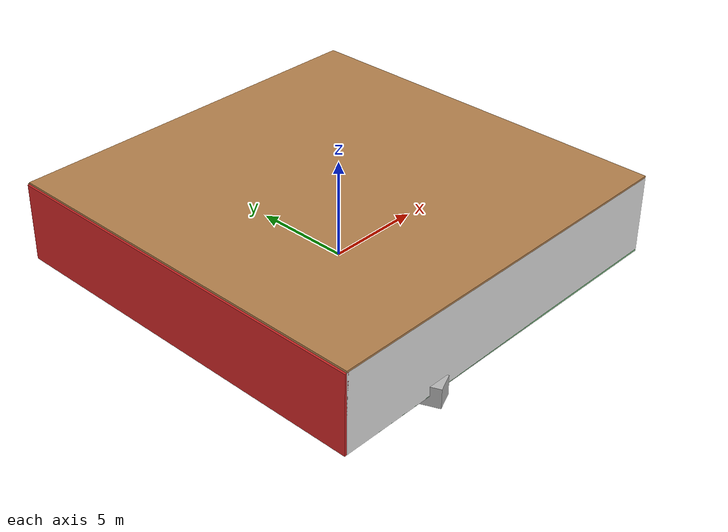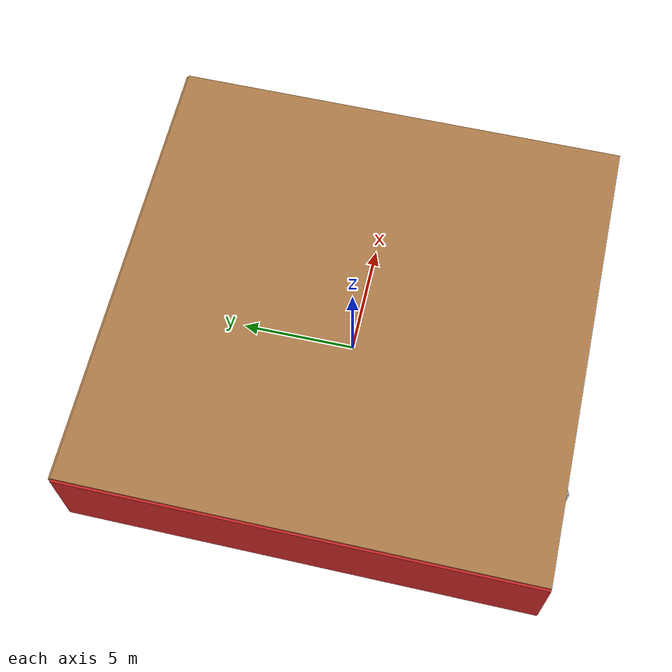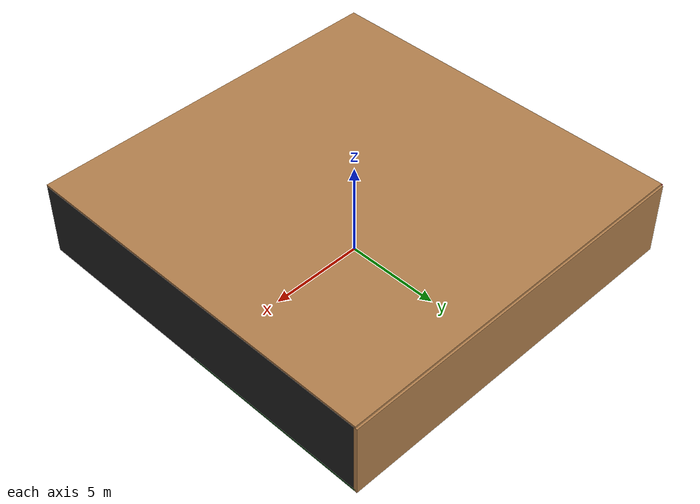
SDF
<sdf version="1.4">
 <world name="default">
  <physics type="ode">
   <max_step_size>0.001</max_step_size>
   <real_time_factor>1</real_time_factor>
   <real_time_update_rate>1000</real_time_update_rate>
   <gravity>0 0 -9.8</gravity>
  </physics>
  <scene><ambient>0.4 0.4 0.4 1</ambient><background>0.7 0.7 0.7 1</background><shadows>1</shadows></scene>
  <model name="Surrounding">
   <static>1</static>
   <link name="Ceiling">
    <collision name="Ceiling_Collision"><geometry><box><size>20 20 0.1</size></box></geometry></collision>
    <visual name="Ceiling_Visual">
     <geometry><box><size>20 20 0.1</size></box></geometry>
     <material>
      <script><uri>file://media/materials/scripts/gazebo.material</uri><name>Gazebo/Wood</name></script>
     </material>
    </visual>
    <pose>0 0 4.05 0 0 0</pose>
   </link>
   <link name="Wall_South">
    <collision name="Wall_South_Collision">
     <geometry><box><size>20 0 4</size></box></geometry>
     <pose>0 0 2 0 -0 0</pose>
    </collision>
    <visual name="Wall_South_Visual">
     <pose>0 0 2 0 -0 0</pose>
     <geometry><box><size>20 0 4</size></box></geometry>
     <material>
      <script><uri>file://media/materials/scripts/gazebo.material</uri><name>Gazebo/White</name></script>
     </material>
    </visual>
    <velocity_decay><linear>0</linear><angular>0</angular></velocity_decay>
    <pose>0 -10 0 0 -0 0</pose>
   </link>
   <link name="Wall_East">
    <collision name="Wall_21_Collision">
     <geometry><box><size>20 0 4</size></box></geometry>
     <pose>0 0 2 0 -0 0</pose>
    </collision>
    <visual name="Wall_21_Visual">
     <pose>0 0 2 0 -0 0</pose>
     <geometry><box><size>20 0 4</size></box></geometry>
     <material>
      <script><uri>file://media/materials/scripts/gazebo.material</uri><name>Gazebo/Black</name></script>
     </material>
    </visual>
    <velocity_decay><linear>0</linear><angular>0</angular></velocity_decay>
    <pose>10 0 0 0 -0 1.5708</pose>
   </link>
   <link name="Wall_North">
    <collision name="Wall_22_Collision">
     <geometry><box><size>20 0.2 4</size></box></geometry>
     <pose>0 0 2 0 -0 0</pose>
    </collision>
    <visual name="Wall_22_Visual">
     <pose>0 0 2 0 -0 0</pose>
     <geometry><box><size>20 0.2 4</size></box></geometry>
     <material>
      <script><uri>file://media/materials/scripts/gazebo.material</uri><name>Gazebo/WoodPallet</name></script>
     </material>
    </visual>
    <velocity_decay><linear>0</linear><angular>0</angular></velocity_decay>
    <pose>0 10 0 0 -0 0</pose>
   </link>
   <link name="Wall_West">
    <collision name="Wall_23_Collision">
     <geometry><box><size>20 0.2 4</size></box></geometry>
     <pose>0 0 2 0 -0 0</pose>
    </collision>
    <visual name="Wall_23_Visual">
     <pose>0 0 2 0 -0 0</pose>
     <geometry><box><size>20 0.2 4</size></box></geometry>
     <material>
      <script><uri>file://media/materials/scripts/gazebo.material</uri><name>Gazebo/RedGlow</name></script>
     </material>
    </visual>
    <velocity_decay><linear>0</linear><angular>0</angular></velocity_decay>
    <pose>-10 0 0 0 0 -1.5708</pose>
   </link>
   <link name="Ground_link">
    <collision name="collision">
     <pose>0 0 .05 0 -0 0</pose>
     <geometry><box><size>20 20 0.1</size></box></geometry>
    </collision>
    <visual name="visual">
     <pose>0 0 .05 0 -0 0</pose>
     <geometry><box><size>20 20 0.1</size></box></geometry>
     <material>
      <script><uri>file://media/materials/scripts/gazebo.material</uri><name>Gazebo/GreenTransparent</name></script>
     </material>
    </visual>
   </link>
   <static>1</static>
  </model>
  <spherical_coordinates>
   <surface_model>EARTH_WGS84</surface_model>
   <latitude_deg>0</latitude_deg>
   <longitude_deg>0</longitude_deg>
   <elevation>0</elevation>
   <heading_deg>0</heading_deg>
  </spherical_coordinates>
  <light name="lightball_0" type="diffuse">
   <diffuse>0.8 0.8 0.8 1</diffuse>
   <specular>0.2 0.2 0.2 1</specular>
   <attenuation>
    <range>100</range>
    <constant>0.7</constant>
    <linear>0.01</linear>
    <quadratic>0.001</quadratic>
   </attenuation>
   <direction>-0.5 0.1 -0.9</direction>
   <pose>-1.70233274756 -2.02262262832 1.30281253203 0 0 0</pose>
  </light>
  <light name="lightball_1" type="diffuse">
   <diffuse>0.8 0.8 0.8 1</diffuse>
   <specular>0.2 0.2 0.2 1</specular>
   <attenuation>
    <range>100</range>
    <constant>0.7</constant>
    <linear>0.01</linear>
    <quadratic>0.001</quadratic>
   </attenuation>
   <direction>-0.5 0.1 -0.9</direction>
   <pose>7.15305502696 -4.13912809967 2.65980737015 0 0 0</pose>
  </light>
  <light name="lightball_2" type="diffuse">
   <diffuse>0.8 0.8 0.8 1</diffuse>
   <specular>0.2 0.2 0.2 1</specular>
   <attenuation>
    <range>100</range>
    <constant>0.7</constant>
    <linear>0.01</linear>
    <quadratic>0.001</quadratic>
   </attenuation>
   <direction>-0.5 0.1 -0.9</direction>
   <pose>-0.922521468703 -9.82741690712 1.32893854888 0 0 0</pose>
  </light>
  <light name="lightball_3" type="diffuse">
   <diffuse>0.8 0.8 0.8 1</diffuse>
   <specular>0.2 0.2 0.2 1</specular>
   <attenuation>
    <range>100</range>
    <constant>0.7</constant>
    <linear>0.01</linear>
    <quadratic>0.001</quadratic>
   </attenuation>
   <direction>-0.5 0.1 -0.9</direction>
   <pose>-4.66852502096 -8.25260586485 0.802314896831 0 0 0</pose>
  </light>
  <include>
   <uri>model://textured_shapes</uri>
   <pose>-5.2064731359 -8.43869036686 0 0 0 0.401260152684</pose>
  </include>
  <include>
   <uri>model://robocup_3Dsim_goal</uri>
   <pose>-5.12650040277 0.593544188547 0 0 0 2.44081681903</pose>
  </include>
  <include>
   <uri>model://textured_shapes</uri>
   <pose>2.63276879331 7.40204701689 0 0 0 0.461026319752</pose>
  </include>
  <include><uri>model://cabinet</uri><pose>6.44488122666 -0.889536305343 0 0 0 0.388458502529</pose></include>
 </world>
</sdf>

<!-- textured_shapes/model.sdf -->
<sdf version="1.6">
  <model name="textured_shapes">
    <pose>0 0 0.5 0 0 0</pose>
    <link name="box">
      <pose>0 -1.5 0 0 0 0</pose>
      <collision name="collision">
        <geometry>
          <box>
            <size>1 1 1</size>
          </box>
        </geometry>
      </collision>
      <visual name="visual">
        <geometry>
          <box>
            <size>1 1 1</size>
          </box>
        </geometry>
        <material>
          <script>
            <uri>model://../model_source/models/textured_shapes/materials/scripts</uri>
            <uri>model://../model_source/models/textured_shapes/materials/textures</uri>
            <name>TexturedShape/Squares</name>
          </script>
        </material>
      </visual>
    </link>
    <link name="sphere">
      <collision name="collision">
        <geometry>
          <sphere>
            <radius>0.5</radius>
          </sphere>
        </geometry>
      </collision>
      <visual name="visual">
        <geometry>
          <sphere>
            <radius>0.5</radius>
          </sphere>
        </geometry>
        <material>
          <script>
            <uri>model://../model_source/models/textured_shapes/materials/scripts</uri>
            <uri>model://../model_source/models/textured_shapes/materials/textures</uri>
            <name>TexturedShape/Squares</name>
          </script>
        </material>
      </visual>
    </link>
    <link name="cylinder">
      <pose>0 1.5 0 0 0 0</pose>
      <collision name="collision">
        <geometry>
          <cylinder>
            <radius>0.5</radius>
            <length>1</length>
          </cylinder>
        </geometry>
      </collision>
      <visual name="visual">
        <geometry>
          <cylinder>
            <radius>0.5</radius>
            <length>1</length>
          </cylinder>
        </geometry>
        <material>
          <script>
            <uri>model://../model_source/models/textured_shapes/materials/scripts</uri>
            <uri>model://../model_source/models/textured_shapes/materials/textures</uri>
            <name>TexturedShape/Squares</name>
          </script>
        </material>
      </visual>
    </link>
  </model>
</sdf>

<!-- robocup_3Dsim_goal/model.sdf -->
<sdf version="1.5">
  <model name="robocup_3d_goal">
    <static>true</static>
    <link name="left_post">
      <pose>0 1.05 0.45 0 0 0</pose>
      <collision name="collision">
        <geometry>
          <cylinder>
            <radius>0.05</radius>
            <length>0.9</length>
          </cylinder>
        </geometry>
      </collision>
      <visual name="visual">
        <geometry>
          <cylinder>
            <radius>0.05</radius>
            <length>0.9</length>
          </cylinder>
        </geometry>
        <material>
          <script>
            <uri>file://media/materials/scripts/gazebo.material</uri>
            <name>Gazebo/ZincYellow</name>
          </script>
        </material>
      </visual>
    </link>
    <link name="left_support_horiz_lower">
      <pose>0.30 1.05 0.01 0 0 0</pose>
      <collision name="collision">
        <geometry>
          <box>
            <size>0.50 0.02 0.02</size>
          </box>
        </geometry>
      </collision>
      <visual name="visual">
        <geometry>
          <box>
            <size>0.50 0.02 0.02</size>
          </box>
        </geometry>
        <material>
          <script>
            <uri>file://media/materials/scripts/gazebo.material</uri>
            <name>Gazebo/White</name>
          </script>
        </material>
      </visual>
    </link>
    <link name="left_support_horiz_upper">
      <pose>0.30 1.05 0.79 0 0 0</pose>
      <collision name="collision">
        <geometry>
          <box>
            <size>0.50 0.02 0.02</size>
          </box>
        </geometry>
      </collision>
      <visual name="visual">
        <geometry>
          <box>
            <size>0.50 0.02 0.02</size>
          </box>
        </geometry>
        <material>
          <script>
            <uri>file://media/materials/scripts/gazebo.material</uri>
            <name>Gazebo/White</name>
          </script>
        </material>
      </visual>
    </link>
    <link name="left_support_vertical">
      <pose>0.56 1.05 0.4 0 1.5708 0</pose>
      <collision name="collision">
        <geometry>
          <box>
            <size>0.80 0.02 0.02</size>
          </box>
        </geometry>
      </collision>
      <visual name="visual">
        <geometry>
          <box>
            <size>0.80 0.02 0.02</size>
          </box>
        </geometry>
        <material>
          <script>
            <uri>file://media/materials/scripts/gazebo.material</uri>
            <name>Gazebo/White</name>
          </script>
        </material>
      </visual>
    </link>
    <link name="right_support_horiz_lower">
      <pose>0.30 -1.05 0.01 0 0 0</pose>
      <collision name="collision">
        <geometry>
          <box>
            <size>0.50 0.02 0.02</size>
          </box>
        </geometry>
      </collision>
      <visual name="visual">
        <geometry>
          <box>
            <size>0.50 0.02 0.02</size>
          </box>
        </geometry>
        <material>
          <script>
            <uri>file://media/materials/scripts/gazebo.material</uri>
            <name>Gazebo/White</name>
          </script>
        </material>
      </visual>
    </link>
    <link name="right_support_horiz_upper">
      <pose>0.30 -1.05 0.79 0 0 0</pose>
      <collision name="collision">
        <geometry>
          <box>
            <size>0.50 0.02 0.02</size>
          </box>
        </geometry>
      </collision>
      <visual name="visual">
        <geometry>
          <box>
            <size>0.50 0.02 0.02</size>
          </box>
        </geometry>
        <material>
          <script>
            <uri>file://media/materials/scripts/gazebo.material</uri>
            <name>Gazebo/White</name>
          </script>
        </material>
      </visual>
    </link>
    <link name="right_support_vertical">
      <pose>0.56 -1.05 0.4 0 1.5708 0</pose>
      <collision name="collision">
        <geometry>
          <box>
            <size>0.80 0.02 0.02</size>
          </box>
        </geometry>
      </collision>
      <visual name="visual">
        <geometry>
          <box>
            <size>0.80 0.02 0.02</size>
          </box>
        </geometry>
        <material>
          <script>
            <uri>file://media/materials/scripts/gazebo.material</uri>
            <name>Gazebo/White</name>
          </script>
        </material>
      </visual>
    </link>
    <link name="center_support_horiz_lower">
      <pose>0.56 0 0.01 0 1.5708 0</pose>
      <collision name="collision">
        <geometry>
          <box>
            <size>0.02 2.08 0.02</size>
          </box>
        </geometry>
      </collision>
      <visual name="visual">
        <geometry>
          <box>
            <size>0.02 2.08 0.02</size>
          </box>
        </geometry>
        <material>
          <script>
            <uri>file://media/materials/scripts/gazebo.material</uri>
            <name>Gazebo/White</name>
          </script>
        </material>
      </visual>
    </link>
    <link name="center_support_horiz_upper">
      <pose>0.56 0 0.79 0 1.5708 0</pose>
      <collision name="collision">
        <geometry>
          <box>
            <size>0.02 2.08 0.02</size>
          </box>
        </geometry>
      </collision>
      <visual name="visual">
        <geometry>
          <box>
            <size>0.02 2.08 0.02</size>
          </box>
        </geometry>
        <material>
          <script>
            <uri>file://media/materials/scripts/gazebo.material</uri>
            <name>Gazebo/White</name>
          </script>
        </material>
      </visual>
    </link>
    <link name="right_post">
      <pose>0 -1.05 0.45 0 0 0</pose>
      <collision name="collision">
        <geometry>
          <cylinder>
            <radius>0.05</radius>
            <length>0.9</length>
          </cylinder>
        </geometry>
      </collision>
      <visual name="visual">
        <geometry>
          <cylinder>
            <radius>0.05</radius>
            <length>0.9</length>
          </cylinder>
        </geometry>
        <material>
          <script>
            <uri>file://media/materials/scripts/gazebo.material</uri>
            <name>Gazebo/ZincYellow</name>
          </script>
        </material>
      </visual>
    </link>
    <link name="crossbar">
      <pose>0 0 0.85 1.57 1.57 0</pose>
      <collision name="collision">
        <geometry>
          <cylinder>
            <radius>0.05</radius>
            <length>2.0</length>
          </cylinder>
        </geometry>
      </collision>
      <visual name="visual">
        <geometry>
          <cylinder>
            <radius>0.05</radius>
            <length>2.0</length>
          </cylinder>
        </geometry>
        <material>
          <script>
            <uri>file://media/materials/scripts/gazebo.material</uri>
            <name>Gazebo/ZincYellow</name>
          </script>
        </material>
      </visual>
    </link>
    <link name="center_net">
      <pose>0.56 0 0.40 0 0 0</pose>
      <collision name="collision">
        <geometry>
          <box>
            <size>0.01 2.1 0.80</size>
          </box>
        </geometry>
      </collision>
      <visual name="visual">
        <geometry>
          <box>
            <size>0.01 2.1 0.80</size>
          </box>
        </geometry>
        <material>
          <script>
            <uri>model://../model_source/models/robocup09_spl_field/materials/scripts/</uri>
            <uri>model://../model_source/models/robocup09_spl_field/materials/textures/</uri>
            <name>RoboCup/Net</name>
          </script>
        </material>
      </visual>
    </link>
    <link name="left_net">
      <pose>0.30 1.05 0.40 0 0 0</pose>
      <collision name="collision">
        <geometry>
          <box>
            <size>0.50 0.01 0.76</size>
          </box>
        </geometry>
      </collision>
      <visual name="visual">
        <geometry>
          <box>
            <size>0.50 0.01 0.76</size>
          </box>
        </geometry>
        <material>
          <script>
            <uri>model://../model_source/models/robocup09_spl_field/materials/scripts/</uri>
            <uri>model://../model_source/models/robocup09_spl_field/materials/textures/</uri>
            <name>RoboCup/Net</name>
          </script>
        </material>
      </visual>
    </link>
    <link name="right_net">
      <pose>0.30 -1.05 0.40 0 0 0</pose>
      <collision name="collision">
        <geometry>
          <box>
            <size>0.50 0.01 0.76</size>
          </box>
        </geometry>
      </collision>
      <visual name="visual">
        <geometry>
          <box>
            <size>0.50 0.01 0.76</size>
          </box>
        </geometry>
        <material>
          <script>
            <uri>model://../model_source/models/robocup09_spl_field/materials/scripts/</uri>
            <uri>model://../model_source/models/robocup09_spl_field/materials/textures/</uri>
            <name>RoboCup/Net</name>
          </script>
        </material>
      </visual>
    </link>
  </model>
</sdf>

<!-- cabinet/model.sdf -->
<sdf version="1.5">
  <model name="cabinet">
    <static>true</static>
    <link name="cabinet_bottom_plate">
      <inertial>
        <pose>0 0 -1 0 0 0</pose>
        <inertia>
          <ixx>2.050000</ixx>
          <ixy>0</ixy>
          <ixz>0</ixz>
          <iyy>2.050000</iyy>
          <iyz>0</iyz>
          <izz>2.050000</izz>
        </inertia>
        <mass>25.000000</mass>
      </inertial>
      <collision name="cabinet_bottom_plate_geom">
        <pose>0 0 0.010000 0 0 0</pose>
        <geometry>
          <box>
            <size>0.450000 0.450000 0.020000</size>
          </box>
        </geometry>
      </collision>
      <visual name="cabinet_bottom_plate_geom_visual">
        <pose>0 0 0.010000 0 0 0</pose>
        <geometry>
          <box>
            <size>0.450000 0.450000 0.020000</size>
          </box>
        </geometry>
        <material>
          <script>
            <uri>model://media/materials/scripts/gazebo.material</uri>
            <name>Gazebo/Wood</name>
          </script>
        </material>
      </visual>
      <collision name="cabinet_bottom_plate_geom_cabinet_back_plate">
        <pose>0.235000 0 0.510000 0 0 0</pose>
        <geometry>
          <box>
            <size>0.020000 0.450000 1.020000</size>
          </box>
        </geometry>
      </collision>
      <visual name="cabinet_bottom_plate_geom_cabinet_back_plate_visual">
        <pose>0.235000 0 0.510000 0 0 0</pose>
        <geometry>
          <box>
            <size>0.020000 0.450000 1.020000</size>
          </box>
        </geometry>
        <material>
          <script>
            <uri>model://media/materials/scripts/gazebo.material</uri>
            <name>Gazebo/Wood</name>
          </script>
        </material>
      </visual>
      <collision name="cabinet_bottom_plate_geom_cabinet_left_plate">
        <pose>0 0.235000 0.510000 0 0 0</pose>
        <geometry>
          <box>
            <size>0.450000 0.020000 1.020000</size>
          </box>
        </geometry>
      </collision>
      <visual name="cabinet_bottom_plate_geom_cabinet_left_plate_visual">
        <pose>0 0.235000 0.510000 0 0 0</pose>
        <geometry>
          <box>
            <size>0.450000 0.020000 1.020000</size>
          </box>
        </geometry>
        <material>
          <script>
            <uri>model://media/materials/scripts/gazebo.material</uri>
            <name>Gazebo/Wood</name>
          </script>
        </material>
      </visual>
      <collision name="cabinet_bottom_plate_geom_cabinet_middle_plate">
        <pose>0 0 0.510000 0 0 0</pose>
        <geometry>
          <box>
            <size>0.450000 0.450000 0.020000</size>
          </box>
        </geometry>
      </collision>
      <visual name="cabinet_bottom_plate_geom_cabinet_middle_plate_visual">
        <pose>0 0 0.510000 0 0 0</pose>
        <geometry>
          <box>
            <size>0.450000 0.450000 0.020000</size>
          </box>
        </geometry>
        <material>
          <script>
            <uri>model://media/materials/scripts/gazebo.material</uri>
            <name>Gazebo/Wood</name>
          </script>
        </material>
      </visual>
      <collision name="cabinet_bottom_plate_geom_cabinet_right_plate">
        <pose>0 -0.235000 0.510000 0 0 0</pose>
        <geometry>
          <box>
            <size>0.450000 0.020000 1.020000</size>
          </box>
        </geometry>
      </collision>
      <visual name="cabinet_bottom_plate_geom_cabinet_right_plate_visual">
        <pose>0 -0.235000 0.510000 0 0 0</pose>
        <geometry>
          <box>
            <size>0.450000 0.020000 1.020000</size>
          </box>
        </geometry>
        <material>
          <script>
            <uri>model://media/materials/scripts/gazebo.material</uri>
            <name>Gazebo/Wood</name>
          </script>
        </material>
      </visual>
      <collision name="cabinet_bottom_plate_geom_cabinet_top_plate">
        <pose>0 0 1.010000 0 0 0</pose>
        <geometry>
          <box>
            <size>0.450000 0.450000 0.020000</size>
          </box>
        </geometry>
      </collision>
      <visual name="cabinet_bottom_plate_geom_cabinet_top_plate_visual">
        <pose>0 0 1.010000 0 0 0</pose>
        <geometry>
          <box>
            <size>0.450000 0.450000 0.020000</size>
          </box>
        </geometry>
        <material>
          <script>
            <uri>model://media/materials/scripts/gazebo.material</uri>
            <name>Gazebo/Wood</name>
          </script>
        </material>
      </visual>
    </link>
  </model>
</sdf>
